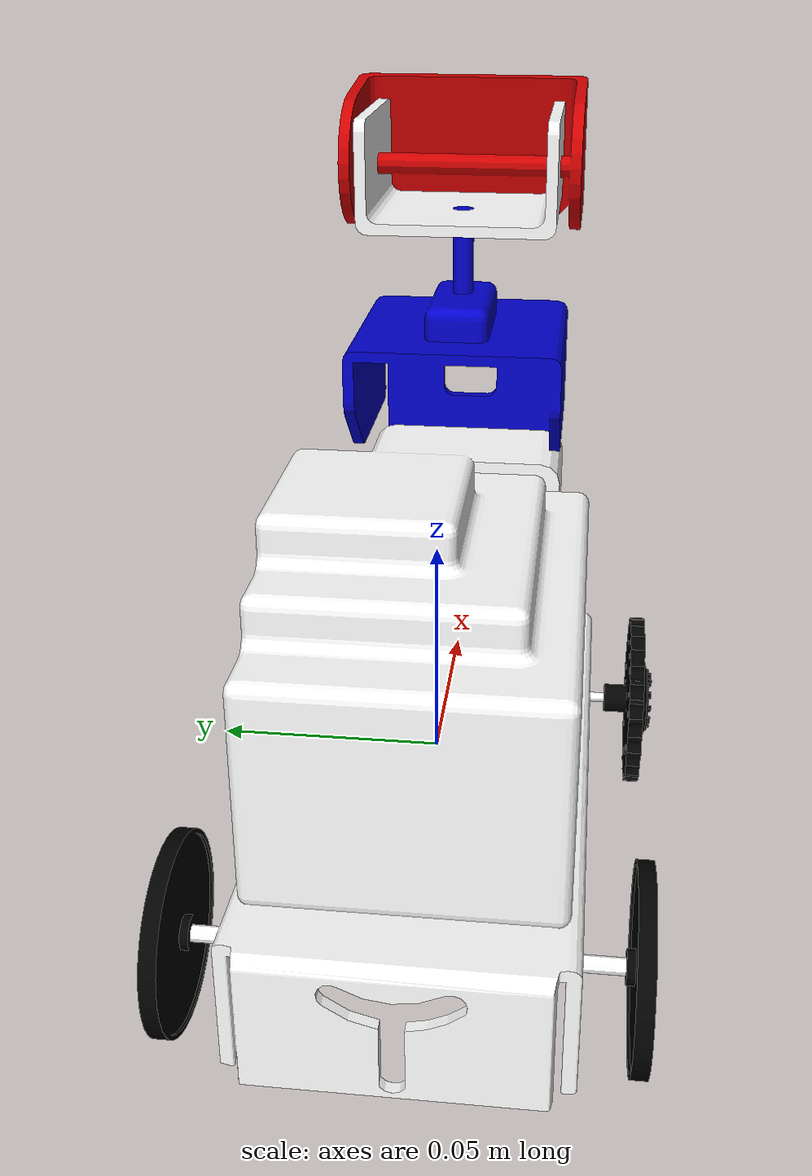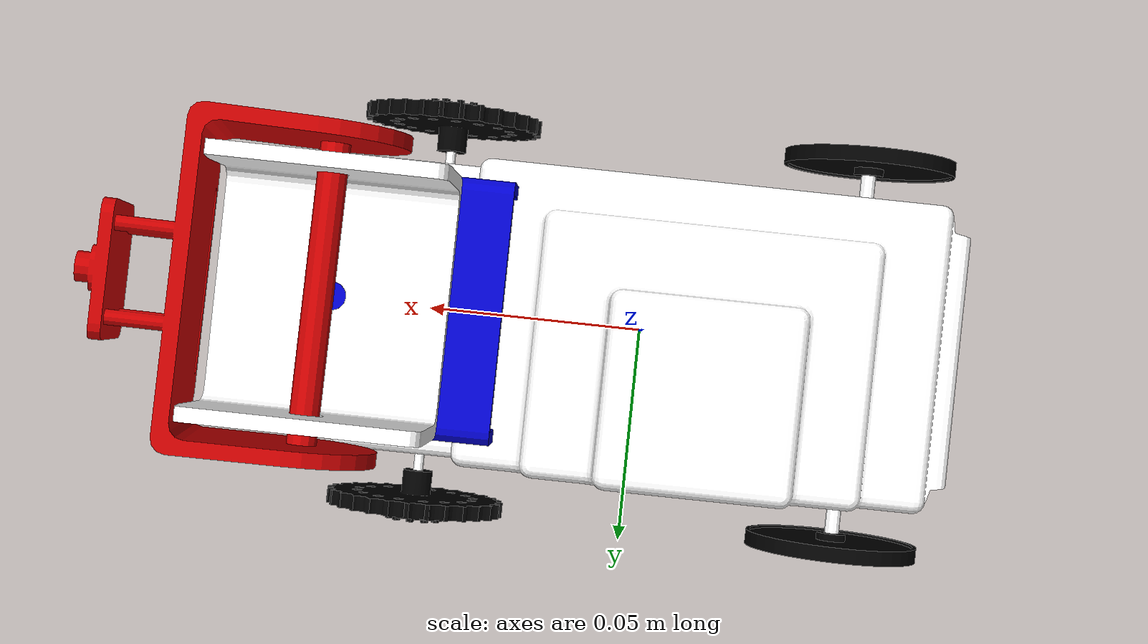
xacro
<?xml version="1.0"?>
<robot xmlns:xacro="http://www.ros.org/wiki/xacro"  name="YahboomRobot">

  <material name="white">
        <color rgba="1 1 1 1"/>
    </material>

    <material name="black">
        <color rgba="0 0 0 1"/>
    </material>

    <material name="blue">
        <color rgba="0 0 0.8 1"/>
    </material>

    <material name="red">
        <color rgba="0.8 0 0 1"/>
    </material>

    <link
    name="base_link">
    <inertial>
      <origin
        xyz="-0.0065246 0.00083805 0.022571"
        rpy="0 0 0" />
      <mass
        value="1" />
      <inertia
        ixx="0.0029"
        ixy="0"
        ixz="0"
        iyy="0.0117"
        iyz="0"
        izz="0.0137" />
    </inertial>
    <visual>
      <origin
        xyz="0 0 0"
        rpy="0 0 0" />
      <geometry>
        <mesh
          filename="package://modelo_robot/meshes/chassis.STL" />
      </geometry>
      <material
        name="white">
      </material>
    </visual>
    <collision>
      <origin
        xyz="0 0 0"
        rpy="0 0 0" />
      <geometry>
        <mesh
          filename="package://modelo_robot/meshes/chassis.STL" />
      </geometry>
    </collision>
  </link>
  <link
    name="prisma_link">
    <inertial>
      <origin
        xyz="0.0035326 0 0.049545"
        rpy="0 0 0" />
      <mass
        value="0.65139" />
      <inertia
        ixx="0.0028986855"
        ixy="0"
        ixz="0"
        iyy="0.0028986855"
        iyz="0"
        izz="0.001628475" />
    </inertial>
    <visual>
      <origin
        xyz="0 0 -0.035"
        rpy="0 0 0" />
      <geometry>
        <mesh
          filename="package://modelo_robot/meshes/prisma_link.STL" />
      </geometry>
      <material
        name="blue">
      </material>
    </visual>
    <collision>
      <origin
        xyz="0 0 0"
        rpy="0 0 0" />
      <geometry>
        <mesh
          filename="package://modelo_robot/meshes/prisma_link.STL" />
      </geometry>
    </collision>
  </link>
  <joint
    name="prisma_joint"
    type="prismatic">
    <origin
      xyz="0.067648 0 0.013"
      rpy="0 0 3.1416" />
    <parent
      link="base_link" />
    <child
      link="prisma_link" />
    <axis
      xyz="0 0 1" />
    <limit
      lower="0"
      upper="0.025"
      effort="100"
      velocity="100" />
    <dynamics
      damping="10"
      friction="10" />
  </joint>
  <link
    name="base_cam_link">
    <inertial>
      <origin
        xyz="0 -2.7756E-17 0.0049838"
        rpy="0 0 0" />
      <mass
        value="0.4" />
      <inertia
        ixx="0.0004"
        ixy="0"
        ixz="0"
        iyy="0.0004"
        iyz="0"
        izz="0.00064" />
    </inertial>
    <visual>
      <origin
        xyz="0 0 0"
        rpy="0 0 0.25" />
      <geometry>
        <mesh
          filename="package://modelo_robot/meshes/base_cam_link.STL" />
      </geometry>
      <material
        name="white">
      </material>
    </visual>
    <collision>
      <origin
        xyz="0 0 0"
        rpy="0 0 0" />
      <geometry>
        <mesh
          filename="package://modelo_robot/meshes/base_cam_link.STL" />
      </geometry>
    </collision>
  </link>
  <joint
    name="base_cam_joint"
    type="revolute">
    <origin
      xyz="0.0125 0 0.1"
      rpy="0 0 0.08" />
    <parent
      link="prisma_link" />
    <child
      link="base_cam_link" />
    <axis
      xyz="0 0 1" />
    <limit
      lower="-1.5"
      upper="1.5"
      effort="100"
      velocity="100" />
    <dynamics
      damping="0.1"
      friction="0.1" />
  </joint>
  <link
    name="cam_link">
    <inertial>
      <origin
        xyz="-0.014554 -0.00083985 -1.4443"
        rpy="0 0 0" />
      <mass
        value="0.357" />
      <inertia
        ixx="0.000357"
        ixy="0"
        ixz="0"
        iyy="0.00073185"
        iyz="0"
        izz="0.00051765" />
    </inertial>
    <visual>
      <origin
        xyz="0.0005 0 0"
        rpy="1.5707 0 3.2" />
      <geometry>
        <mesh
          filename="package://modelo_robot/meshes/cam_link.STL" />
      </geometry>
      <material
        name="red">
      </material>
    </visual>
    <collision>
      <origin
        xyz="0 0 0"
        rpy="0 0 0" />
      <geometry>
        <mesh
          filename="package://modelo_robot/meshes/cam_link.STL" />
      </geometry>
    </collision>
  </link>
  <joint
    name="cam_joint"
    type="revolute">
    <origin
      xyz="0 0 0.01"
      rpy="3.1416 3.1416 -0.15" />
    <parent
      link="base_cam_link" />
    <child
      link="cam_link" />
    <axis
      xyz="0 1 0" />
    <limit
      lower="-0.5"
      upper="0.4"
      effort="100"
      velocity="100" />
    <dynamics
      damping="0.1"
      friction="0.1" />
  </joint>
  <link
    name="der_del_link">
    <inertial>
      <origin
        xyz="2.0817 -1.0408 -2.4896"
        rpy="0 0 0" />
      <mass
        value="0.15" />
      <inertia
        ixx="0.000035"
        ixy="0"
        ixz="0"
        iyy="0.000035"
        iyz="0"
        izz="0.00003" />
    </inertial>
    <visual>
      <origin
        xyz="0 0 0"
        rpy="0 0 0" />
      <geometry>
        <mesh
          filename="package://modelo_robot/meshes/der_del_link.STL" />
      </geometry>
      <material
        name="black">
      </material>
    </visual>
    <collision>
      <origin
        xyz="0 0 0"
        rpy="0 0 0" />
      <geometry>
        <mesh
          filename="package://modelo_robot/meshes/der_del_link.STL" />
      </geometry>
    </collision>
  </link>
  <joint
    name="izq_del_joint"
    type="continuous">
    <origin
      xyz="0.050556 0.047804 -0.015"
      rpy="1.5708 0 0" />
    <parent
      link="base_link" />
    <child
      link="der_del_link" />
    <axis
      xyz="0 0 1" />
    <limit
      effort="100"
      velocity="100" />
    <dynamics
      damping="0.1"
      friction="0.1" />
  </joint>
  <link
    name="izq_del_link">
    <inertial>
      <origin
        xyz="-2.7756 6.9389 2.4896"
        rpy="0 0 0" />
      <mass
        value="0.15" />
      <inertia
        ixx="0.000035"
        ixy="0"
        ixz="0"
        iyy="0.000035"
        iyz="0"
        izz="0.00003" />
    </inertial>
    <visual>
      <origin
        xyz="0 0 0"
        rpy="0 0 0" />
      <geometry>
        <mesh
          filename="package://modelo_robot/meshes/izq_del_link.STL" />
      </geometry>
      <material
        name="black">
      </material>
    </visual>
    <collision>
      <origin
        xyz="0 0 0"
        rpy="0 0 0" />
      <geometry>
        <mesh
          filename="package://modelo_robot/meshes/izq_del_link.STL" />
      </geometry>
    </collision>
  </link>
  <joint
    name="der_del_joint"
    type="continuous">
    <origin
      xyz="0.050556 -0.046806 -0.015"
      rpy="1.5708 0 0" />
    <parent
      link="base_link" />
    <child
      link="izq_del_link" />
    <axis
      xyz="0 0 1" />
    <limit
      effort="100"
      velocity="100" />
    <dynamics
      damping="0.1"
      friction="0.1" />
  </joint>
  <link
    name="izq_atras_link">
    <inertial>
      <origin
        xyz="0 0 0"
        rpy="0 0 0" />
      <mass
        value="0.15" />
      <inertia
        ixx="0.000035"
        ixy="0"
        ixz="0"
        iyy="0.000035"
        iyz="0"
        izz="0.00003" />
    </inertial>
    <visual>
      <origin
        xyz="0.10338 0 0.0946"
        rpy="0 0 0" />
      <geometry>
        <mesh
          filename="package://modelo_robot/meshes/izq_atras_link.STL" />
      </geometry>
      <material
        name="black">
      </material>
    </visual>
    <collision>
      <origin
        xyz="0 0 0"
        rpy="0 0 0" />
      <geometry>
        <mesh
          filename="package://modelo_robot/meshes/izq_atras_link.STL" />
      </geometry>
    </collision>
  </link>
  <joint
    name="izq_atras_joint"
    type="continuous">
    <origin
      xyz="-0.052704 0.047799 -0.015"
      rpy="1.5707 0 0" />
    <parent
      link="base_link" />
    <child
      link="izq_atras_link" />
    <axis
      xyz="0 0 1" />
    <limit
      effort="100"
      velocity="100" />
    <dynamics
      damping="0.1"
      friction="0.1" />
  </joint>
  <link
    name="der_atras_link">
    <inertial>
      <origin
        xyz="0 0 0"
        rpy="0 0 0" />
      <mass
        value="0.15" />
      <inertia
        ixx="0.000035"
        ixy="0"
        ixz="0"
        iyy="0.000035"
        iyz="0"
        izz="0.00003" />
    </inertial>
    <visual>
      <origin
        xyz="0.1033 0 0"
        rpy="0 0 0" />
      <geometry>
        <mesh
          filename="package://modelo_robot/meshes/der_atras_link.STL" />
      </geometry>
      <material
        name="black">
      </material>
    </visual>
    <collision>
      <origin
        xyz="0 0 0"
        rpy="0 0 0" />
      <geometry>
        <mesh
          filename="package://modelo_robot/meshes/der_atras_link.STL" />
      </geometry>
    </collision>
  </link>
  <joint
    name="der_atras_joint"
    type="continuous">
    <origin
      xyz="-0.052704 -0.046801 -0.015"
      rpy="1.5708 0 0" />
    <parent
      link="base_link" />
    <child
      link="der_atras_link" />
    <axis
      xyz="0 0 1" />
    <limit
      effort="100"
      velocity="100" />
    <dynamics
      damping="0.1"
      friction="0.1" />
  </joint>

    <xacro:include filename="gazebo.xacro" />

</robot>
